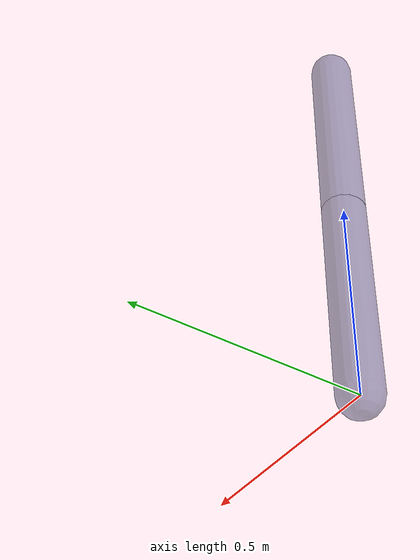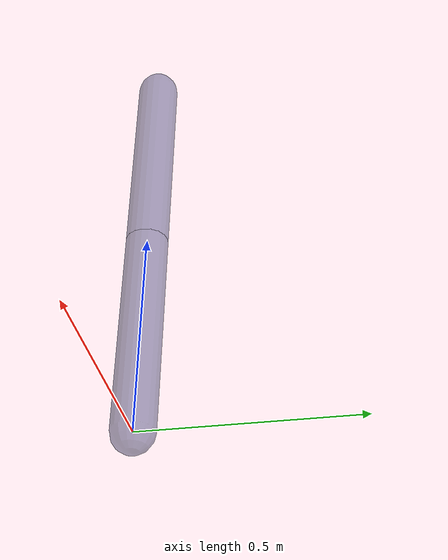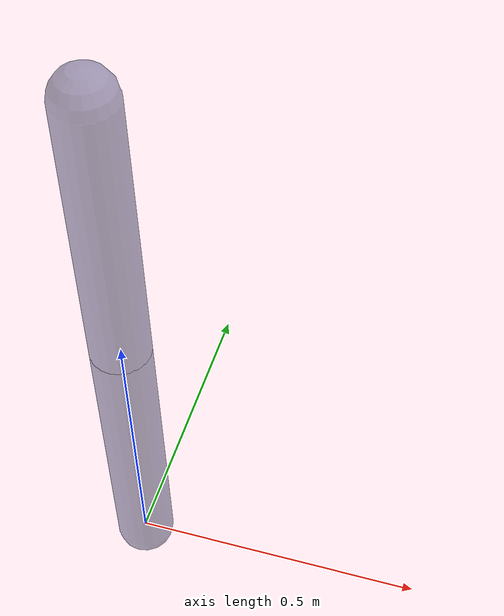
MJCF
<mujoco>

  <compiler coordinate="local"/>
  <option timestep="0.001" iterations="100" tolerance="1e-10" solver="Newton" gravity="0 0 -9.81"/>

  <asset>
    <texture type="skybox" builtin="gradient" rgb1="1 1 1" rgb2="0.6 0.8 1" width="256" height="256"/>
  </asset>

  <worldbody>
    <light pos="0 1 1" dir="0 -1 -1" diffuse="1 1 1"/>
    <body>
      <joint name="joint1" type="hinge" pos="0 0 0" axis="0 1 0" frictionloss="0.5"/>
      <geom type="capsule" fromto="0 0 0  0 0 0.5" size="0.05" mass="1" rgba="0.3 0.3 0.5 0.5"/>
      <body>
	<joint name="joint2" type="hinge" pos="0 0 0.5" axis="0 1 0" frictionloss="0.5"/>
	<geom type="capsule" fromto="0 0 0.5  0 0 1" size="0.05" mass="1" rgba="0.3 0.3 0.5 0.5"/>
      </body>
    </body>
  </worldbody>

  <actuator>
    <motor joint="joint1"/>
    <motor joint="joint2"/>
  </actuator>

  <sensor>
    <jointpos joint="joint1"/>
    <jointpos joint="joint2"/>
    <jointvel joint="joint1"/>
    <jointvel joint="joint2"/>
  </sensor>

</mujoco>
